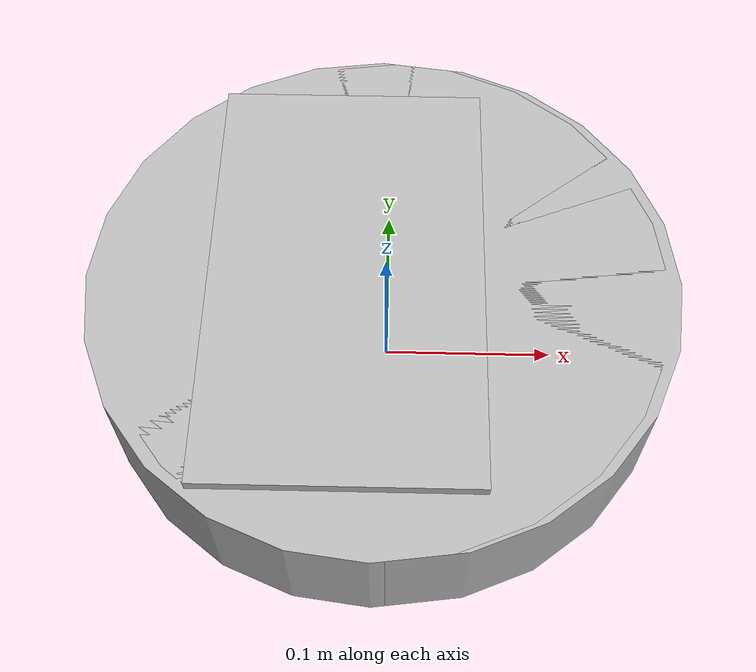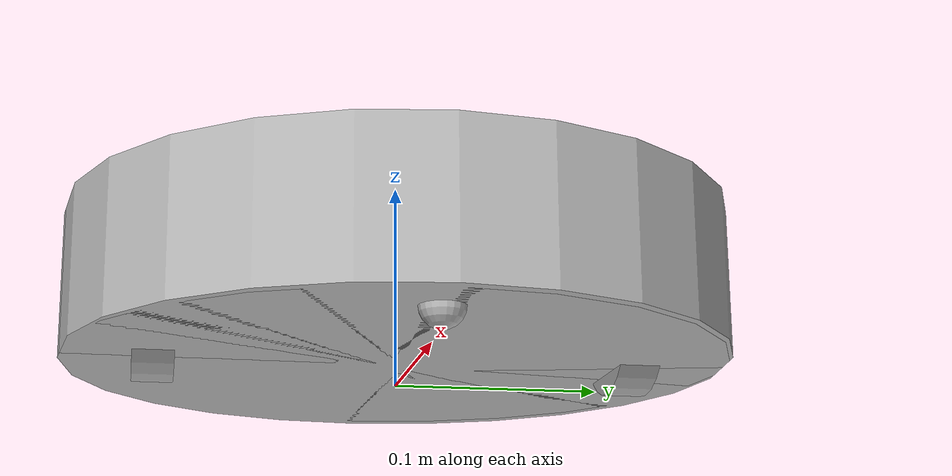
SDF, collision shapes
<?xml version="1.0" ?>
<sdf version="1.5">
  <model name="create2">
    <link name="base">
      <inertial>
        <pose>0.001453 -0.000453 0.029787 0 0 0</pose>
        <inertia>
          <ixx>0.058640</ixx>
          <ixy>0.000124</ixy>
          <ixz>0.000615</ixz>
          <iyy>0.058786</iyy>
          <iyz>0.000014</iyz>
          <izz>1.532440</izz>
        </inertia>
        <mass>3.5</mass>
      </inertial>
      <collision name="base_collision">
        <pose>-0.0051 0 0.046 0 0 0</pose>
        <geometry>
          <cylinder>
            <radius>0.1625</radius>
	          <length>0.0719</length>
          </cylinder>
        </geometry>
      </collision>
      <visual name="base_visual">
        <pose>0 0 0.046 0 0 0</pose>
        <geometry>
          <mesh>
            <uri>model://create_crai/meshes/create2_visual.dae</uri>
          </mesh>
        </geometry>
      </visual>
      <collision name="front_wheel_collision">
        <pose>0.125 0 0.0105 0 0 0</pose>
        <geometry>
          <sphere>
            <radius>0.0105</radius>
          </sphere>
        </geometry>
        <surface>
          <friction>
            <ode>
              <mu>0.01</mu>
              <mu2>0.01</mu2>
              <fdir1>0 0 0</fdir1>
              <slip1>0</slip1>
              <slip2>0</slip2>
            </ode>
          </friction>
        </surface>
      </collision>
      <visual name="front_wheel_visual">
        <pose>0.125 0 0.0105 0 0 0</pose>
        <geometry>
          <sphere>
            <radius>0.0105</radius>
          </sphere>
        </geometry>
      </visual>
      <collision name="bumper_collision">
        <pose>0.0025 0 0.046 0 0 0</pose>
        <geometry>
          <cylinder>
            <radius>0.1615</radius>
	          <length>0.0719</length>
          </cylinder>
        </geometry>
      </collision>
      <sensor name="bumper_sensor" type="contact">
          <contact>
            <collision>bumper_collision</collision>
          </contact>
          <plugin name="bumper_plugin" filename="libgazebo_ros_bumper.so">
            <always_on>true</always_on>
            <update_rate>10.0</update_rate>
            <bumperTopicName>create2_bumper</bumperTopicName>
            <frameName>base</frameName>
          </plugin>
       </sensor>
    </link>
    <link name="top_plate">
      <pose>-0.0222 0 0.088 0 0 0</pose>
      <inertial>
        <inertia>
          <ixx>0.001000</ixx>
          <ixy>0.001000</ixy>
          <ixz>0.001000</ixz>
          <iyy>0.001000</iyy>
          <iyz>0.001000</iyz>
          <izz>0.001000</izz>
        </inertia>
        <mass>0.010000</mass>
      </inertial>
      <collision name="collision">
        <geometry>
          <box>
            <size>0.1524 0.254 0.00635</size>
          </box>
        </geometry>
      </collision>
      <visual name="visual">
        <geometry>
          <mesh>
            <uri>model://create_crai/meshes/green_top.dae</uri>
          </mesh>
        </geometry>
      </visual>
    </link>
    <link name="left_wheel">
      <pose>-0.0042 0.1175 0.036 0 0 0</pose>
      <inertial>
        <inertia>
          <ixx>0.001000</ixx>
          <ixy>0</ixy>
          <ixz>0</ixz>
          <iyy>0.001000</iyy>
          <iyz>0</iyz>
          <izz>0.001000</izz>
        </inertia>
        <mass>0.010000</mass>
      </inertial>
      <collision name="collision">
        <pose>0 0 0 0 1.570700 1.570700</pose>
        <geometry>
          <cylinder>
            <radius>0.036000</radius>
            <length>0.02000</length>
          </cylinder>
        </geometry>
        <surface>
          <friction>
            <ode>
              <mu>10</mu>
              <mu2>10</mu2>
              <fdir1>0 0 0</fdir1>
              <slip1>0</slip1>
              <slip2>0</slip2>
            </ode>
          </friction>
        </surface>
      </collision>
      <visual name="visual">
        <pose>0 0 0 0 1.570700 1.570700</pose>
        <geometry>
          <cylinder>
            <radius>0.036000</radius>
            <length>0.02000</length>
          </cylinder>
        </geometry>
      </visual>
    </link>
    <link name="right_wheel">
      <pose>-0.0042 -0.1175 0.036 0 0 0</pose>
      <inertial>
        <inertia>
          <ixx>0.001000</ixx>
          <ixy>0</ixy>
          <ixz>0</ixz>
          <iyy>0.001000</iyy>
          <iyz>0</iyz>
          <izz>0.001000</izz>
        </inertia>
        <mass>0.010000</mass>
      </inertial>
      <collision name="collision">
        <pose>0 0 0 0 1.570700 1.570700</pose>
        <geometry>
          <cylinder>
            <radius>0.036000</radius>
            <length>0.02000</length>
          </cylinder>
        </geometry>
        <surface>
          <friction>
            <ode>
              <mu>10</mu>
              <mu2>10</mu2>
              <fdir1>0 0 0</fdir1>
              <slip1>0</slip1>
              <slip2>0</slip2>
            </ode>
          </friction>
        </surface>
      </collision>
      <visual name="visual">
        <pose>0 0 0 0 1.570700 1.570700</pose>
        <geometry>
          <cylinder>
            <radius>0.036000</radius>
            <length>0.02000</length>
          </cylinder>
        </geometry>
      </visual>
    </link>
    <joint name="base2left_wheel" type="revolute">
      <parent>base</parent>
      <child>left_wheel</child>
      <axis>
        <xyz>0 1 0</xyz>
        <use_parent_model_frame>true</use_parent_model_frame>
      </axis>
    </joint>
    <joint name="base2right_wheel" type="revolute">
      <parent>base</parent>
      <child>right_wheel</child>
      <axis>
        <xyz>0 1 0</xyz>
        <use_parent_model_frame>true</use_parent_model_frame>
      </axis>
    </joint>
    <joint name="base2top_plate" type="revolute">
      <parent>base</parent>
      <child>top_plate</child>
      <axis>
      <xyz>0 0 1</xyz>
      <limit>
        <upper>0</upper>
        <lower>0</lower>
      </limit>
  </axis>
    </joint>

  <plugin name="differential_drive_controller" filename="libgazebo_ros_diff_drive.so">
    <alwaysOn>true</alwaysOn>
    <updateRate>10.0</updateRate>
    <leftJoint>base2left_wheel</leftJoint>
    <rightJoint>base2right_wheel</rightJoint>
    <wheelSeparation>0.235</wheelSeparation>
    <wheelDiameter>0.072</wheelDiameter>
    <wheeltorque>5</wheeltorque>
    <commandTopic>create2_cmd_vel</commandTopic>
    <odometryTopic>create2_odom</odometryTopic>
    <odometryFrame>base</odometryFrame>
    <robotBaseFrame>base</robotBaseFrame>

    <rosDebugLevel>na</rosDebugLevel>
    <publishWheelTF>false</publishWheelTF>
    <publishWheelJointState>false</publishWheelJointState>
    <wheelAcceleration>0</wheelAcceleration>

  </plugin>

  </model>
</sdf>
